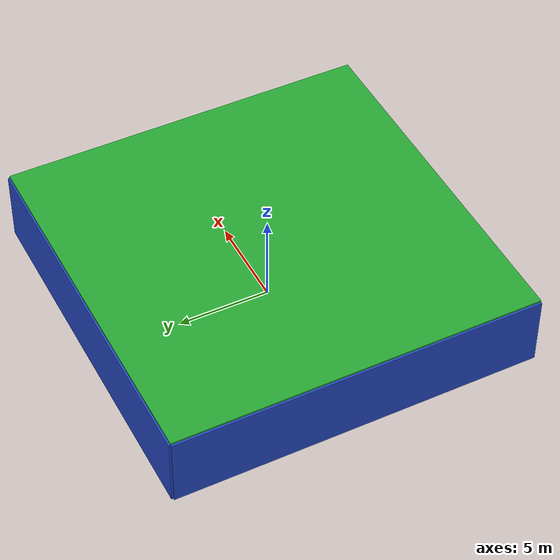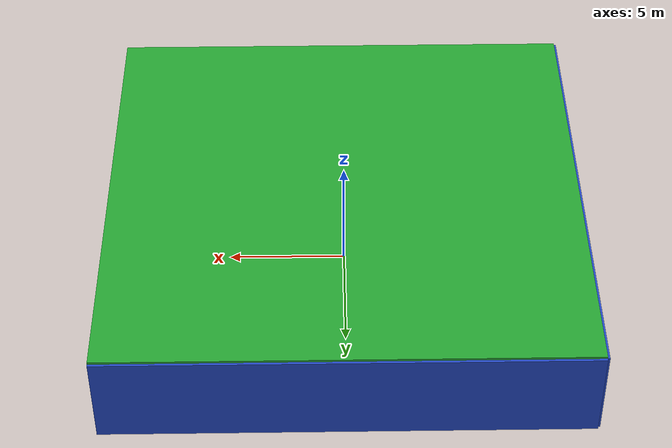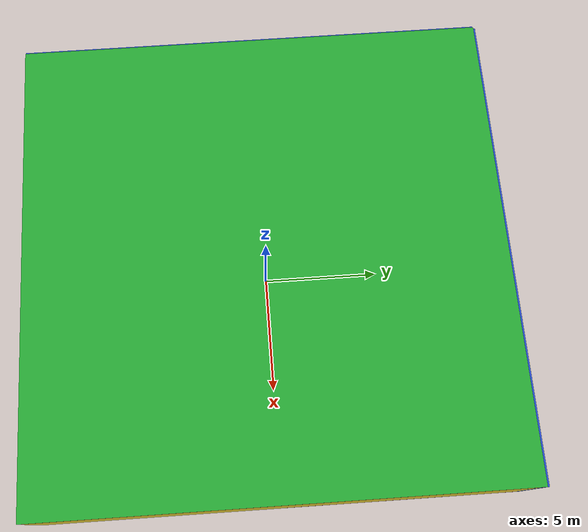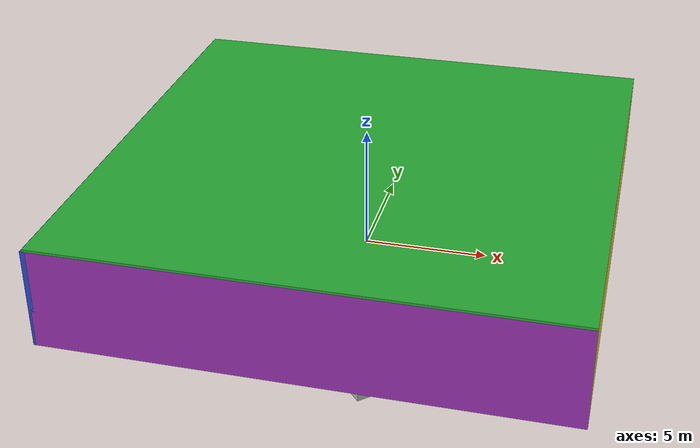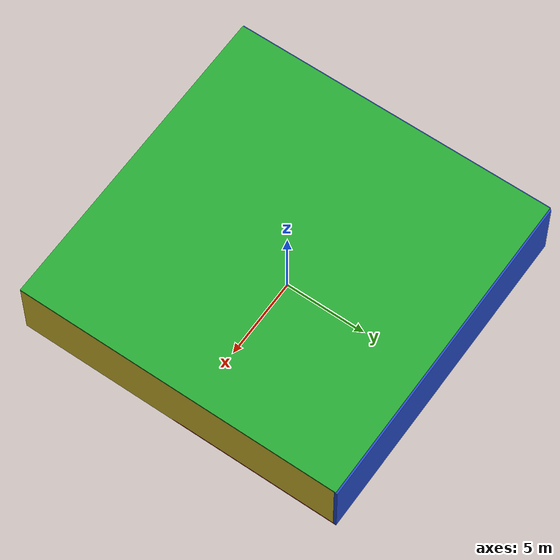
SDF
<sdf version="1.4">
 <world name="default">
  <physics type="ode">
   <max_step_size>0.001</max_step_size>
   <real_time_factor>1</real_time_factor>
   <real_time_update_rate>1000</real_time_update_rate>
   <gravity>0 0 -9.8</gravity>
  </physics>
  <scene><ambient>0.4 0.4 0.4 1</ambient><background>0.7 0.7 0.7 1</background><shadows>1</shadows></scene>
  <model name="Surrounding">
   <static>1</static>
   <link name="Ceiling">
    <collision name="Ceiling_Collision"><geometry><box><size>20 20 0.1</size></box></geometry></collision>
    <visual name="Ceiling_Visual">
     <geometry><box><size>20 20 0.1</size></box></geometry>
     <material>
      <script><uri>file://media/materials/scripts/gazebo.material</uri><name>Gazebo/GreenGlow</name></script>
     </material>
    </visual>
    <pose>0 0 4.05 0 0 0</pose>
   </link>
   <link name="Wall_South">
    <collision name="Wall_South_Collision">
     <geometry><box><size>20 0 4</size></box></geometry>
     <pose>0 0 2 0 -0 0</pose>
    </collision>
    <visual name="Wall_South_Visual">
     <pose>0 0 2 0 -0 0</pose>
     <geometry><box><size>20 0 4</size></box></geometry>
     <material>
      <script><uri>file://media/materials/scripts/gazebo.material</uri><name>Gazebo/Purple</name></script>
     </material>
    </visual>
    <velocity_decay><linear>0</linear><angular>0</angular></velocity_decay>
    <pose>0 -10 0 0 -0 0</pose>
   </link>
   <link name="Wall_East">
    <collision name="Wall_21_Collision">
     <geometry><box><size>20 0 4</size></box></geometry>
     <pose>0 0 2 0 -0 0</pose>
    </collision>
    <visual name="Wall_21_Visual">
     <pose>0 0 2 0 -0 0</pose>
     <geometry><box><size>20 0 4</size></box></geometry>
     <material>
      <script><uri>file://media/materials/scripts/gazebo.material</uri><name>Gazebo/ZincYellow</name></script>
     </material>
    </visual>
    <velocity_decay><linear>0</linear><angular>0</angular></velocity_decay>
    <pose>10 0 0 0 -0 1.5708</pose>
   </link>
   <link name="Wall_North">
    <collision name="Wall_22_Collision">
     <geometry><box><size>20 0.2 4</size></box></geometry>
     <pose>0 0 2 0 -0 0</pose>
    </collision>
    <visual name="Wall_22_Visual">
     <pose>0 0 2 0 -0 0</pose>
     <geometry><box><size>20 0.2 4</size></box></geometry>
     <material>
      <script><uri>file://media/materials/scripts/gazebo.material</uri><name>Gazebo/BlueGlow</name></script>
     </material>
    </visual>
    <velocity_decay><linear>0</linear><angular>0</angular></velocity_decay>
    <pose>0 10 0 0 -0 0</pose>
   </link>
   <link name="Wall_West">
    <collision name="Wall_23_Collision">
     <geometry><box><size>20 0.2 4</size></box></geometry>
     <pose>0 0 2 0 -0 0</pose>
    </collision>
    <visual name="Wall_23_Visual">
     <pose>0 0 2 0 -0 0</pose>
     <geometry><box><size>20 0.2 4</size></box></geometry>
     <material>
      <script><uri>file://media/materials/scripts/gazebo.material</uri><name>Gazebo/BlueGlow</name></script>
     </material>
    </visual>
    <velocity_decay><linear>0</linear><angular>0</angular></velocity_decay>
    <pose>-10 0 0 0 0 -1.5708</pose>
   </link>
   <link name="Ground_link">
    <collision name="collision">
     <pose>0 0 .05 0 -0 0</pose>
     <geometry><box><size>20 20 0.1</size></box></geometry>
    </collision>
    <visual name="visual">
     <pose>0 0 .05 0 -0 0</pose>
     <geometry><box><size>20 20 0.1</size></box></geometry>
     <material>
      <script><uri>file://media/materials/scripts/gazebo.material</uri><name>Gazebo/RedBright</name></script>
     </material>
    </visual>
   </link>
   <static>1</static>
  </model>
  <spherical_coordinates>
   <surface_model>EARTH_WGS84</surface_model>
   <latitude_deg>0</latitude_deg>
   <longitude_deg>0</longitude_deg>
   <elevation>0</elevation>
   <heading_deg>0</heading_deg>
  </spherical_coordinates>
  <light name="lightball_0" type="diffuse">
   <diffuse>0.8 0.8 0.8 1</diffuse>
   <specular>0.2 0.2 0.2 1</specular>
   <attenuation>
    <range>100</range>
    <constant>0.7</constant>
    <linear>0.01</linear>
    <quadratic>0.001</quadratic>
   </attenuation>
   <direction>-0.5 0.1 -0.9</direction>
   <pose>-7.78114455665 7.9963869967 1.97586153787 0 0 0</pose>
  </light>
  <light name="lightball_1" type="diffuse">
   <diffuse>0.8 0.8 0.8 1</diffuse>
   <specular>0.2 0.2 0.2 1</specular>
   <attenuation>
    <range>100</range>
    <constant>0.7</constant>
    <linear>0.01</linear>
    <quadratic>0.001</quadratic>
   </attenuation>
   <direction>-0.5 0.1 -0.9</direction>
   <pose>-1.74818873649 -3.81417181927 2.72503723435 0 0 0</pose>
  </light>
  <light name="lightball_2" type="diffuse">
   <diffuse>0.8 0.8 0.8 1</diffuse>
   <specular>0.2 0.2 0.2 1</specular>
   <attenuation>
    <range>100</range>
    <constant>0.7</constant>
    <linear>0.01</linear>
    <quadratic>0.001</quadratic>
   </attenuation>
   <direction>-0.5 0.1 -0.9</direction>
   <pose>3.87214608276 -2.35541094483 3.22952424689 0 0 0</pose>
  </light>
  <light name="lightball_3" type="diffuse">
   <diffuse>0.8 0.8 0.8 1</diffuse>
   <specular>0.2 0.2 0.2 1</specular>
   <attenuation>
    <range>100</range>
    <constant>0.7</constant>
    <linear>0.01</linear>
    <quadratic>0.001</quadratic>
   </attenuation>
   <direction>-0.5 0.1 -0.9</direction>
   <pose>6.03515906985 2.17400435633 3.62532892362 0 0 0</pose>
  </light>
  <light name="lightball_4" type="diffuse">
   <diffuse>0.8 0.8 0.8 1</diffuse>
   <specular>0.2 0.2 0.2 1</specular>
   <attenuation>
    <range>100</range>
    <constant>0.7</constant>
    <linear>0.01</linear>
    <quadratic>0.001</quadratic>
   </attenuation>
   <direction>-0.5 0.1 -0.9</direction>
   <pose>9.49969062345 -5.00138013117 2.27766476549 0 0 0</pose>
  </light>
  <light name="lightball_5" type="diffuse">
   <diffuse>0.8 0.8 0.8 1</diffuse>
   <specular>0.2 0.2 0.2 1</specular>
   <attenuation>
    <range>100</range>
    <constant>0.7</constant>
    <linear>0.01</linear>
    <quadratic>0.001</quadratic>
   </attenuation>
   <direction>-0.5 0.1 -0.9</direction>
   <pose>-7.48783163783 -0.146542153067 3.55151719706 0 0 0</pose>
  </light>
  <light name="lightball_6" type="diffuse">
   <diffuse>0.8 0.8 0.8 1</diffuse>
   <specular>0.2 0.2 0.2 1</specular>
   <attenuation>
    <range>100</range>
    <constant>0.7</constant>
    <linear>0.01</linear>
    <quadratic>0.001</quadratic>
   </attenuation>
   <direction>-0.5 0.1 -0.9</direction>
   <pose>0.253829020264 2.4004789167 3.06849226287 0 0 0</pose>
  </light>
  <light name="lightball_7" type="diffuse">
   <diffuse>0.8 0.8 0.8 1</diffuse>
   <specular>0.2 0.2 0.2 1</specular>
   <attenuation>
    <range>100</range>
    <constant>0.7</constant>
    <linear>0.01</linear>
    <quadratic>0.001</quadratic>
   </attenuation>
   <direction>-0.5 0.1 -0.9</direction>
   <pose>1.19921824313 8.43311886067 2.09315828256 0 0 0</pose>
  </light>
  <light name="lightball_8" type="diffuse">
   <diffuse>0.8 0.8 0.8 1</diffuse>
   <specular>0.2 0.2 0.2 1</specular>
   <attenuation>
    <range>100</range>
    <constant>0.7</constant>
    <linear>0.01</linear>
    <quadratic>0.001</quadratic>
   </attenuation>
   <direction>-0.5 0.1 -0.9</direction>
   <pose>-8.99433761952 2.2167128516 2.63035390667 0 0 0</pose>
  </light>
  <light name="lightball_9" type="diffuse">
   <diffuse>0.8 0.8 0.8 1</diffuse>
   <specular>0.2 0.2 0.2 1</specular>
   <attenuation>
    <range>100</range>
    <constant>0.7</constant>
    <linear>0.01</linear>
    <quadratic>0.001</quadratic>
   </attenuation>
   <direction>-0.5 0.1 -0.9</direction>
   <pose>1.19282969236 -5.77613595962 1.96779029854 0 0 0</pose>
  </light>
  <include><uri>model://cabinet</uri><pose>-7.54929825762 -6.34034142738 0 0 0 2.36656274211</pose></include>
  <include>
   <uri>model://construction_cone</uri>
   <pose>-6.73383023784 7.36530630631 0 0 0 2.21607150688</pose>
  </include>
  <include>
   <uri>model://textured_shapes</uri>
   <pose>1.08579103389 -7.92774616521 0 0 0 0.730002706286</pose>
  </include>
  <include><uri>model://cabinet</uri><pose>1.51092725226 8.59746986158 0 0 0 2.7730071481</pose></include>
  <include>
   <uri>model://robocup_3Dsim_goal</uri>
   <pose>4.14041297676 2.50742354342 0 0 0 2.22237572282</pose>
  </include>
  <include>
   <uri>model://construction_cone</uri>
   <pose>4.02969030276 4.78376496516 0 0 0 2.37831369212</pose>
  </include>
 </world>
</sdf>

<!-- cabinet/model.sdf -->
<sdf version="1.5">
  <model name="cabinet">
    <static>true</static>
    <link name="cabinet_bottom_plate">
      <inertial>
        <pose>0 0 -1 0 0 0</pose>
        <inertia>
          <ixx>2.050000</ixx>
          <ixy>0</ixy>
          <ixz>0</ixz>
          <iyy>2.050000</iyy>
          <iyz>0</iyz>
          <izz>2.050000</izz>
        </inertia>
        <mass>25.000000</mass>
      </inertial>
      <collision name="cabinet_bottom_plate_geom">
        <pose>0 0 0.010000 0 0 0</pose>
        <geometry>
          <box>
            <size>0.450000 0.450000 0.020000</size>
          </box>
        </geometry>
      </collision>
      <visual name="cabinet_bottom_plate_geom_visual">
        <pose>0 0 0.010000 0 0 0</pose>
        <geometry>
          <box>
            <size>0.450000 0.450000 0.020000</size>
          </box>
        </geometry>
        <material>
          <script>
            <uri>model://media/materials/scripts/gazebo.material</uri>
            <name>Gazebo/Wood</name>
          </script>
        </material>
      </visual>
      <collision name="cabinet_bottom_plate_geom_cabinet_back_plate">
        <pose>0.235000 0 0.510000 0 0 0</pose>
        <geometry>
          <box>
            <size>0.020000 0.450000 1.020000</size>
          </box>
        </geometry>
      </collision>
      <visual name="cabinet_bottom_plate_geom_cabinet_back_plate_visual">
        <pose>0.235000 0 0.510000 0 0 0</pose>
        <geometry>
          <box>
            <size>0.020000 0.450000 1.020000</size>
          </box>
        </geometry>
        <material>
          <script>
            <uri>model://media/materials/scripts/gazebo.material</uri>
            <name>Gazebo/Wood</name>
          </script>
        </material>
      </visual>
      <collision name="cabinet_bottom_plate_geom_cabinet_left_plate">
        <pose>0 0.235000 0.510000 0 0 0</pose>
        <geometry>
          <box>
            <size>0.450000 0.020000 1.020000</size>
          </box>
        </geometry>
      </collision>
      <visual name="cabinet_bottom_plate_geom_cabinet_left_plate_visual">
        <pose>0 0.235000 0.510000 0 0 0</pose>
        <geometry>
          <box>
            <size>0.450000 0.020000 1.020000</size>
          </box>
        </geometry>
        <material>
          <script>
            <uri>model://media/materials/scripts/gazebo.material</uri>
            <name>Gazebo/Wood</name>
          </script>
        </material>
      </visual>
      <collision name="cabinet_bottom_plate_geom_cabinet_middle_plate">
        <pose>0 0 0.510000 0 0 0</pose>
        <geometry>
          <box>
            <size>0.450000 0.450000 0.020000</size>
          </box>
        </geometry>
      </collision>
      <visual name="cabinet_bottom_plate_geom_cabinet_middle_plate_visual">
        <pose>0 0 0.510000 0 0 0</pose>
        <geometry>
          <box>
            <size>0.450000 0.450000 0.020000</size>
          </box>
        </geometry>
        <material>
          <script>
            <uri>model://media/materials/scripts/gazebo.material</uri>
            <name>Gazebo/Wood</name>
          </script>
        </material>
      </visual>
      <collision name="cabinet_bottom_plate_geom_cabinet_right_plate">
        <pose>0 -0.235000 0.510000 0 0 0</pose>
        <geometry>
          <box>
            <size>0.450000 0.020000 1.020000</size>
          </box>
        </geometry>
      </collision>
      <visual name="cabinet_bottom_plate_geom_cabinet_right_plate_visual">
        <pose>0 -0.235000 0.510000 0 0 0</pose>
        <geometry>
          <box>
            <size>0.450000 0.020000 1.020000</size>
          </box>
        </geometry>
        <material>
          <script>
            <uri>model://media/materials/scripts/gazebo.material</uri>
            <name>Gazebo/Wood</name>
          </script>
        </material>
      </visual>
      <collision name="cabinet_bottom_plate_geom_cabinet_top_plate">
        <pose>0 0 1.010000 0 0 0</pose>
        <geometry>
          <box>
            <size>0.450000 0.450000 0.020000</size>
          </box>
        </geometry>
      </collision>
      <visual name="cabinet_bottom_plate_geom_cabinet_top_plate_visual">
        <pose>0 0 1.010000 0 0 0</pose>
        <geometry>
          <box>
            <size>0.450000 0.450000 0.020000</size>
          </box>
        </geometry>
        <material>
          <script>
            <uri>model://media/materials/scripts/gazebo.material</uri>
            <name>Gazebo/Wood</name>
          </script>
        </material>
      </visual>
    </link>
  </model>
</sdf>

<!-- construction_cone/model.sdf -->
<sdf version="1.5">
  <model name="Construction Cone">
    <link name="link">
      <collision name="collision">
        <geometry>
          <mesh>
            <scale>10 10 10</scale>
            <uri>file://isr-testbed/construction_cone/meshes/construction_cone.dae</uri>
          </mesh>
        </geometry>
      </collision>
      <visual name="visual">
        <geometry>
          <mesh>
            <scale>10 10 10</scale>
            <uri>file://isr-testbed/construction_cone/meshes/construction_cone.dae</uri>
          </mesh>
        </geometry>
      </visual>
    </link>
  </model>
</sdf>

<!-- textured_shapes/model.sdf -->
<sdf version="1.6">
  <model name="textured_shapes">
    <pose>0 0 0.5 0 0 0</pose>
    <link name="box">
      <pose>0 -1.5 0 0 0 0</pose>
      <collision name="collision">
        <geometry>
          <box>
            <size>1 1 1</size>
          </box>
        </geometry>
      </collision>
      <visual name="visual">
        <geometry>
          <box>
            <size>1 1 1</size>
          </box>
        </geometry>
        <material>
          <script>
            <uri>model://../model_source/models/textured_shapes/materials/scripts</uri>
            <uri>model://../model_source/models/textured_shapes/materials/textures</uri>
            <name>TexturedShape/Squares</name>
          </script>
        </material>
      </visual>
    </link>
    <link name="sphere">
      <collision name="collision">
        <geometry>
          <sphere>
            <radius>0.5</radius>
          </sphere>
        </geometry>
      </collision>
      <visual name="visual">
        <geometry>
          <sphere>
            <radius>0.5</radius>
          </sphere>
        </geometry>
        <material>
          <script>
            <uri>model://../model_source/models/textured_shapes/materials/scripts</uri>
            <uri>model://../model_source/models/textured_shapes/materials/textures</uri>
            <name>TexturedShape/Squares</name>
          </script>
        </material>
      </visual>
    </link>
    <link name="cylinder">
      <pose>0 1.5 0 0 0 0</pose>
      <collision name="collision">
        <geometry>
          <cylinder>
            <radius>0.5</radius>
            <length>1</length>
          </cylinder>
        </geometry>
      </collision>
      <visual name="visual">
        <geometry>
          <cylinder>
            <radius>0.5</radius>
            <length>1</length>
          </cylinder>
        </geometry>
        <material>
          <script>
            <uri>model://../model_source/models/textured_shapes/materials/scripts</uri>
            <uri>model://../model_source/models/textured_shapes/materials/textures</uri>
            <name>TexturedShape/Squares</name>
          </script>
        </material>
      </visual>
    </link>
  </model>
</sdf>

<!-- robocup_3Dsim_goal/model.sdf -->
<sdf version="1.5">
  <model name="robocup_3d_goal">
    <static>true</static>
    <link name="left_post">
      <pose>0 1.05 0.45 0 0 0</pose>
      <collision name="collision">
        <geometry>
          <cylinder>
            <radius>0.05</radius>
            <length>0.9</length>
          </cylinder>
        </geometry>
      </collision>
      <visual name="visual">
        <geometry>
          <cylinder>
            <radius>0.05</radius>
            <length>0.9</length>
          </cylinder>
        </geometry>
        <material>
          <script>
            <uri>file://media/materials/scripts/gazebo.material</uri>
            <name>Gazebo/ZincYellow</name>
          </script>
        </material>
      </visual>
    </link>
    <link name="left_support_horiz_lower">
      <pose>0.30 1.05 0.01 0 0 0</pose>
      <collision name="collision">
        <geometry>
          <box>
            <size>0.50 0.02 0.02</size>
          </box>
        </geometry>
      </collision>
      <visual name="visual">
        <geometry>
          <box>
            <size>0.50 0.02 0.02</size>
          </box>
        </geometry>
        <material>
          <script>
            <uri>file://media/materials/scripts/gazebo.material</uri>
            <name>Gazebo/White</name>
          </script>
        </material>
      </visual>
    </link>
    <link name="left_support_horiz_upper">
      <pose>0.30 1.05 0.79 0 0 0</pose>
      <collision name="collision">
        <geometry>
          <box>
            <size>0.50 0.02 0.02</size>
          </box>
        </geometry>
      </collision>
      <visual name="visual">
        <geometry>
          <box>
            <size>0.50 0.02 0.02</size>
          </box>
        </geometry>
        <material>
          <script>
            <uri>file://media/materials/scripts/gazebo.material</uri>
            <name>Gazebo/White</name>
          </script>
        </material>
      </visual>
    </link>
    <link name="left_support_vertical">
      <pose>0.56 1.05 0.4 0 1.5708 0</pose>
      <collision name="collision">
        <geometry>
          <box>
            <size>0.80 0.02 0.02</size>
          </box>
        </geometry>
      </collision>
      <visual name="visual">
        <geometry>
          <box>
            <size>0.80 0.02 0.02</size>
          </box>
        </geometry>
        <material>
          <script>
            <uri>file://media/materials/scripts/gazebo.material</uri>
            <name>Gazebo/White</name>
          </script>
        </material>
      </visual>
    </link>
    <link name="right_support_horiz_lower">
      <pose>0.30 -1.05 0.01 0 0 0</pose>
      <collision name="collision">
        <geometry>
          <box>
            <size>0.50 0.02 0.02</size>
          </box>
        </geometry>
      </collision>
      <visual name="visual">
        <geometry>
          <box>
            <size>0.50 0.02 0.02</size>
          </box>
        </geometry>
        <material>
          <script>
            <uri>file://media/materials/scripts/gazebo.material</uri>
            <name>Gazebo/White</name>
          </script>
        </material>
      </visual>
    </link>
    <link name="right_support_horiz_upper">
      <pose>0.30 -1.05 0.79 0 0 0</pose>
      <collision name="collision">
        <geometry>
          <box>
            <size>0.50 0.02 0.02</size>
          </box>
        </geometry>
      </collision>
      <visual name="visual">
        <geometry>
          <box>
            <size>0.50 0.02 0.02</size>
          </box>
        </geometry>
        <material>
          <script>
            <uri>file://media/materials/scripts/gazebo.material</uri>
            <name>Gazebo/White</name>
          </script>
        </material>
      </visual>
    </link>
    <link name="right_support_vertical">
      <pose>0.56 -1.05 0.4 0 1.5708 0</pose>
      <collision name="collision">
        <geometry>
          <box>
            <size>0.80 0.02 0.02</size>
          </box>
        </geometry>
      </collision>
      <visual name="visual">
        <geometry>
          <box>
            <size>0.80 0.02 0.02</size>
          </box>
        </geometry>
        <material>
          <script>
            <uri>file://media/materials/scripts/gazebo.material</uri>
            <name>Gazebo/White</name>
          </script>
        </material>
      </visual>
    </link>
    <link name="center_support_horiz_lower">
      <pose>0.56 0 0.01 0 1.5708 0</pose>
      <collision name="collision">
        <geometry>
          <box>
            <size>0.02 2.08 0.02</size>
          </box>
        </geometry>
      </collision>
      <visual name="visual">
        <geometry>
          <box>
            <size>0.02 2.08 0.02</size>
          </box>
        </geometry>
        <material>
          <script>
            <uri>file://media/materials/scripts/gazebo.material</uri>
            <name>Gazebo/White</name>
          </script>
        </material>
      </visual>
    </link>
    <link name="center_support_horiz_upper">
      <pose>0.56 0 0.79 0 1.5708 0</pose>
      <collision name="collision">
        <geometry>
          <box>
            <size>0.02 2.08 0.02</size>
          </box>
        </geometry>
      </collision>
      <visual name="visual">
        <geometry>
          <box>
            <size>0.02 2.08 0.02</size>
          </box>
        </geometry>
        <material>
          <script>
            <uri>file://media/materials/scripts/gazebo.material</uri>
            <name>Gazebo/White</name>
          </script>
        </material>
      </visual>
    </link>
    <link name="right_post">
      <pose>0 -1.05 0.45 0 0 0</pose>
      <collision name="collision">
        <geometry>
          <cylinder>
            <radius>0.05</radius>
            <length>0.9</length>
          </cylinder>
        </geometry>
      </collision>
      <visual name="visual">
        <geometry>
          <cylinder>
            <radius>0.05</radius>
            <length>0.9</length>
          </cylinder>
        </geometry>
        <material>
          <script>
            <uri>file://media/materials/scripts/gazebo.material</uri>
            <name>Gazebo/ZincYellow</name>
          </script>
        </material>
      </visual>
    </link>
    <link name="crossbar">
      <pose>0 0 0.85 1.57 1.57 0</pose>
      <collision name="collision">
        <geometry>
          <cylinder>
            <radius>0.05</radius>
            <length>2.0</length>
          </cylinder>
        </geometry>
      </collision>
      <visual name="visual">
        <geometry>
          <cylinder>
            <radius>0.05</radius>
            <length>2.0</length>
          </cylinder>
        </geometry>
        <material>
          <script>
            <uri>file://media/materials/scripts/gazebo.material</uri>
            <name>Gazebo/ZincYellow</name>
          </script>
        </material>
      </visual>
    </link>
    <link name="center_net">
      <pose>0.56 0 0.40 0 0 0</pose>
      <collision name="collision">
        <geometry>
          <box>
            <size>0.01 2.1 0.80</size>
          </box>
        </geometry>
      </collision>
      <visual name="visual">
        <geometry>
          <box>
            <size>0.01 2.1 0.80</size>
          </box>
        </geometry>
        <material>
          <script>
            <uri>model://../model_source/models/robocup09_spl_field/materials/scripts/</uri>
            <uri>model://../model_source/models/robocup09_spl_field/materials/textures/</uri>
            <name>RoboCup/Net</name>
          </script>
        </material>
      </visual>
    </link>
    <link name="left_net">
      <pose>0.30 1.05 0.40 0 0 0</pose>
      <collision name="collision">
        <geometry>
          <box>
            <size>0.50 0.01 0.76</size>
          </box>
        </geometry>
      </collision>
      <visual name="visual">
        <geometry>
          <box>
            <size>0.50 0.01 0.76</size>
          </box>
        </geometry>
        <material>
          <script>
            <uri>model://../model_source/models/robocup09_spl_field/materials/scripts/</uri>
            <uri>model://../model_source/models/robocup09_spl_field/materials/textures/</uri>
            <name>RoboCup/Net</name>
          </script>
        </material>
      </visual>
    </link>
    <link name="right_net">
      <pose>0.30 -1.05 0.40 0 0 0</pose>
      <collision name="collision">
        <geometry>
          <box>
            <size>0.50 0.01 0.76</size>
          </box>
        </geometry>
      </collision>
      <visual name="visual">
        <geometry>
          <box>
            <size>0.50 0.01 0.76</size>
          </box>
        </geometry>
        <material>
          <script>
            <uri>model://../model_source/models/robocup09_spl_field/materials/scripts/</uri>
            <uri>model://../model_source/models/robocup09_spl_field/materials/textures/</uri>
            <name>RoboCup/Net</name>
          </script>
        </material>
      </visual>
    </link>
  </model>
</sdf>
